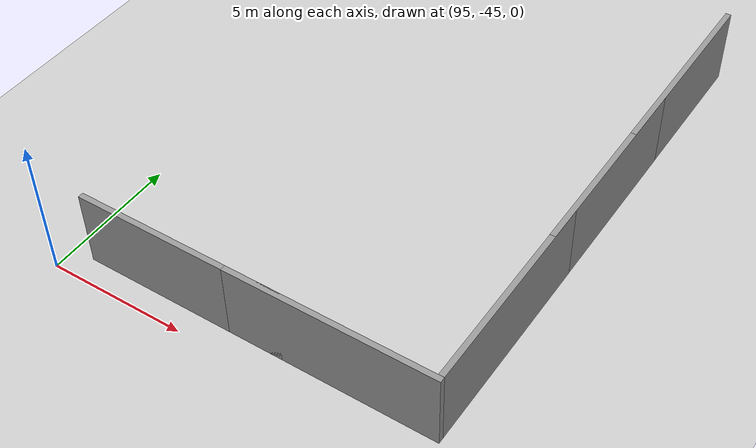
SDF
<sdf version="1.6">
 <world name="default">
  <model name="ground_plane">
   <static>1</static>
   <link name="link">
    <collision name="collision">
     <geometry><plane><normal>0 0 1</normal><size>100 100</size></plane></geometry>
     <surface><friction><ode><mu>100</mu><mu2>50</mu2></ode></friction></surface>
    </collision>
    <visual name="visual">
     <cast_shadows>0</cast_shadows>
     <geometry><plane><normal>0 0 1</normal><size>100 100</size></plane></geometry>
     <material>
      <script><uri>file://media/materials/scripts/gazebo.material</uri><name>Gazebo/Grey</name></script>
     </material>
    </visual>
   </link>
  </model>
  <model name="grey_wall_7">
   <static>1</static>
   <link name="link">
    <pose>0 0 1.4 0 -0 0</pose>
    <collision name="collision"><geometry><box><size>7.5 0.2 2.8</size></box></geometry></collision>
    <visual name="visual">
     <cast_shadows>0</cast_shadows>
     <geometry><box><size>7.5 0.2 2.8</size></box></geometry>
     <material>
      <script>
       <uri>model://grey_wall/materials/scripts</uri>
       <uri>model://grey_wall/materials/textures</uri>
       <name>vrc/grey_wall</name>
      </script>
     </material>
    </visual>
   </link>
   <pose>99.5383 -44.06 0 0 -0 0</pose>
  </model>
  <model name="grey_wall_8">
   <static>1</static>
   <link name="link">
    <pose>0 0 1.4 0 -0 0</pose>
    <collision name="collision"><geometry><box><size>7.5 0.2 2.8</size></box></geometry></collision>
    <visual name="visual">
     <cast_shadows>0</cast_shadows>
     <geometry><box><size>7.5 0.2 2.8</size></box></geometry>
     <material>
      <script>
       <uri>model://grey_wall/materials/scripts</uri>
       <uri>model://grey_wall/materials/textures</uri>
       <name>vrc/grey_wall</name>
      </script>
     </material>
    </visual>
   </link>
   <pose>105.047 -44.06 0 0 -0 0</pose>
  </model>
  <model name="grey_wall_15">
   <static>1</static>
   <link name="link">
    <pose>0 0 1.4 0 -0 0</pose>
    <collision name="collision"><geometry><box><size>7.5 0.2 2.8</size></box></geometry></collision>
    <visual name="visual">
     <cast_shadows>0</cast_shadows>
     <geometry><box><size>7.5 0.2 2.8</size></box></geometry>
     <material>
      <script>
       <uri>model://grey_wall/materials/scripts</uri>
       <uri>model://grey_wall/materials/textures</uri>
       <name>vrc/grey_wall</name>
      </script>
     </material>
    </visual>
   </link>
   <pose>108.698 -28.637 0 0 -0 1.57</pose>
  </model>
  <model name="grey_wall_16">
   <static>1</static>
   <link name="link">
    <pose>0 0 1.4 0 -0 0</pose>
    <collision name="collision"><geometry><box><size>7.5 0.2 2.8</size></box></geometry></collision>
    <visual name="visual">
     <cast_shadows>0</cast_shadows>
     <geometry><box><size>7.5 0.2 2.8</size></box></geometry>
     <material>
      <script>
       <uri>model://grey_wall/materials/scripts</uri>
       <uri>model://grey_wall/materials/textures</uri>
       <name>vrc/grey_wall</name>
      </script>
     </material>
    </visual>
   </link>
   <pose>108.698 -34 0 0 -0 1.57</pose>
  </model>
  <model name="grey_wall_17">
   <static>1</static>
   <link name="link">
    <pose>0 0 1.4 0 -0 0</pose>
    <collision name="collision"><geometry><box><size>7.5 0.2 2.8</size></box></geometry></collision>
    <visual name="visual">
     <cast_shadows>0</cast_shadows>
     <geometry><box><size>7.5 0.2 2.8</size></box></geometry>
     <material>
      <script>
       <uri>model://grey_wall/materials/scripts</uri>
       <uri>model://grey_wall/materials/textures</uri>
       <name>vrc/grey_wall</name>
      </script>
     </material>
    </visual>
   </link>
   <pose>108.698 -40.2095 0 0 -0 1.57</pose>
  </model>
 </world>
</sdf>
